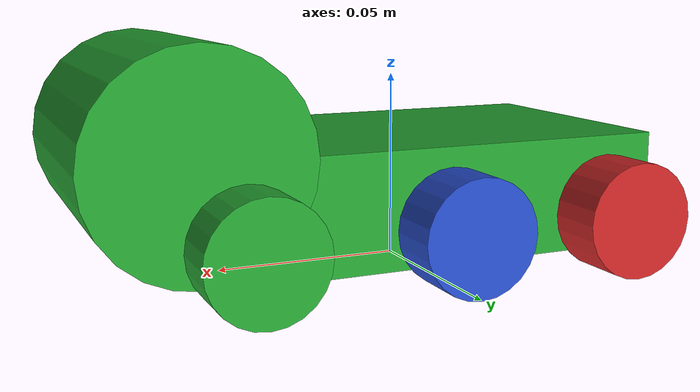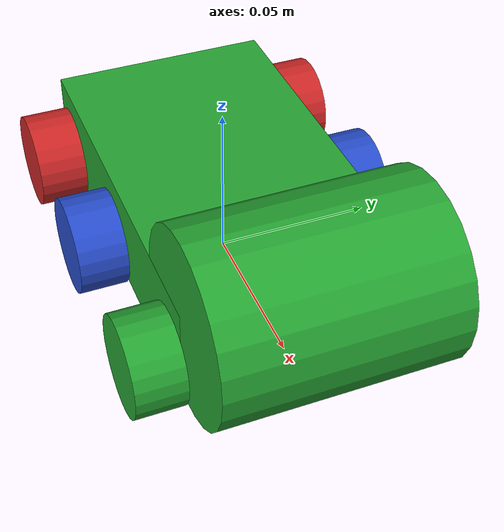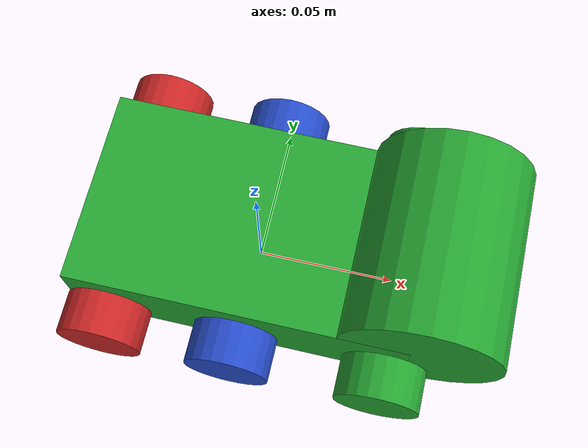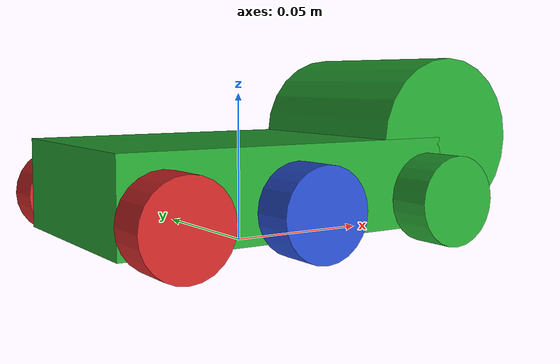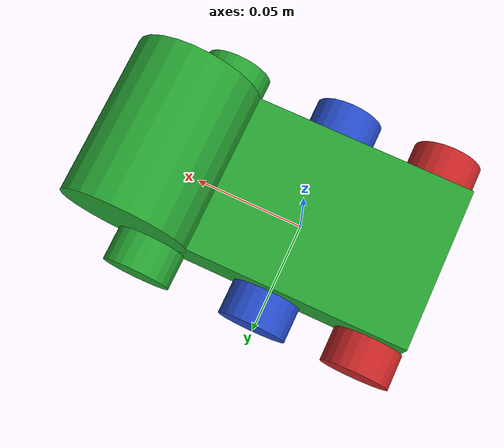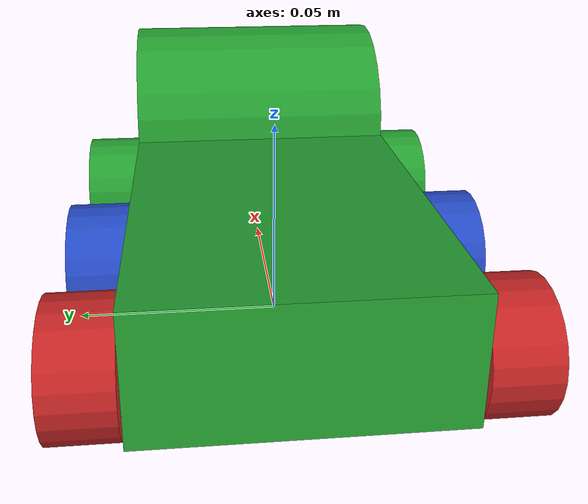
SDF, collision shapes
<sdf version='1.7'>
  <model name='nanosaur_gazebo'>
    <link name='base_link'>
      <inertial>
        <pose>0.007416 0 0.028711 0 -0 0</pose>
        <mass>0.17</mass>
        <inertia>
          <ixx>0.000128586</ixx>
          <ixy>2.5411e-21</ixy>
          <ixz>-1.37217e-05</ixz>
          <iyy>0.000314622</iyy>
          <iyz>0</iyz>
          <izz>0.000360215</izz>
        </inertia>
      </inertial>
      <collision name='base_link_fixed_joint_lump__cover_collision'>
        <pose>0.063 0 0.034 1.5708 1.5708 0</pose>
        <geometry>
          <cylinder>
            <length>0.07</length>
            <radius>0.028</radius>
          </cylinder>
        </geometry>
        <surface>
          <contact>
            <ode/>
          </contact>
          <friction>
            <ode/>
          </friction>
        </surface>
      </collision>
      <collision name='base_link_fixed_joint_lump__base_rear_collision_1'>
        <pose>0 0 0.02 0 -0 0</pose>
        <geometry>
          <box>
            <size>0.12 0.07 0.03</size>
          </box>
        </geometry>
        <surface>
          <contact>
            <ode/>
          </contact>
          <friction>
            <ode/>
          </friction>
        </surface>
      </collision>
      <visual name='base_link_fixed_joint_lump__base_front_visual'>
        <pose>0 0 0.03 0 -0 0</pose>
        <geometry>
          <mesh>
            <scale>0.001 0.001 0.001</scale>
            <uri>file:///home/user/nanosaur/install/nanosaur_description/share/nanosaur_description/meshes/base_front.stl</uri>
          </mesh>
        </geometry>
        <material>
          <ambient>0 0.5 0 1</ambient>
          <diffuse>0 0.5 0 1</diffuse>
          <specular>0 0.5 0 1</specular>
          <script>
            <name>Gazebo/Green</name>
            <uri>file://media/materials/scripts/gazebo.material</uri>
          </script>
        </material>
      </visual>
      <visual name='base_link_fixed_joint_lump__cover_visual_1'>
        <pose>0.06 0 0.004 0 -0 0</pose>
        <geometry>
          <mesh>
            <scale>0.001 0.001 0.001</scale>
            <uri>file:///home/user/nanosaur/install/nanosaur_description/share/nanosaur_description/meshes/cover-fe.stl</uri>
          </mesh>
        </geometry>
        <material>
          <ambient>0 0.5 0 1</ambient>
          <diffuse>0 0.5 0 1</diffuse>
          <specular>0 0.5 0 1</specular>
          <script>
            <name>Gazebo/Green</name>
            <uri>file://media/materials/scripts/gazebo.material</uri>
          </script>
        </material>
      </visual>
      <visual name='base_link_fixed_joint_lump__camera_board_visual_2'>
        <pose>0.072864 0 0.038798 0.087266 1e-06 -1.5708</pose>
        <geometry>
          <mesh>
            <scale>1 1 1</scale>
            <uri>file:///home/user/nanosaur/install/nanosaur_description/share/nanosaur_description/meshes/parts/fisheye_camera.dae</uri>
          </mesh>
        </geometry>
        <material>
          <ambient>0.2 0.2 0.2 1</ambient>
          <diffuse>0.2 0.2 0.2 1</diffuse>
          <specular>0.2 0.2 0.2 1</specular>
          <script>
            <name>Gazebo/Grey</name>
            <uri>file://media/materials/scripts/gazebo.material</uri>
          </script>
        </material>
      </visual>
      <visual name='base_link_fixed_joint_lump__camera_camera_link_visual_3'>
        <pose>0.0742 0 0.035 0 -0.087266 0</pose>
        <geometry>
          <box>
            <size>0.02 0.01 0.01</size>
          </box>
        </geometry>
      </visual>
      <visual name='base_link_fixed_joint_lump__display_left_visual_4'>
        <pose>0.036 0.0242 0.064 0.401425 1e-06 1.57079</pose>
        <geometry>
          <mesh>
            <scale>1 1 1</scale>
            <uri>file:///home/user/nanosaur/install/nanosaur_description/share/nanosaur_description/meshes/parts/OLED_Module.stl</uri>
          </mesh>
        </geometry>
        <material>
          <script>
            <name>Gazebo/Black</name>
            <uri>file://media/materials/scripts/gazebo.material</uri>
          </script>
        </material>
      </visual>
      <visual name='base_link_fixed_joint_lump__display_right_visual_5'>
        <pose>0.036 -0.0242 0.064 0.401425 1e-06 1.57079</pose>
        <geometry>
          <mesh>
            <scale>1 1 1</scale>
            <uri>file:///home/user/nanosaur/install/nanosaur_description/share/nanosaur_description/meshes/parts/OLED_Module.stl</uri>
          </mesh>
        </geometry>
        <material>
          <script>
            <name>Gazebo/Black</name>
            <uri>file://media/materials/scripts/gazebo.material</uri>
          </script>
        </material>
      </visual>
      <visual name='base_link_fixed_joint_lump__motor_board_visual_6'>
        <pose>0.055 0 0.035 0 0.95993 0</pose>
        <geometry>
          <mesh>
            <scale>1 1 1</scale>
            <uri>file:///home/user/nanosaur/install/nanosaur_description/share/nanosaur_description/meshes/parts/motor_board.stl</uri>
          </mesh>
        </geometry>
        <material>
          <ambient>0.2 0.2 0.2 1</ambient>
          <diffuse>0.2 0.2 0.2 1</diffuse>
          <specular>0.2 0.2 0.2 1</specular>
          <script>
            <name>Gazebo/DarkGrey</name>
            <uri>file://media/materials/scripts/gazebo.material</uri>
          </script>
        </material>
      </visual>
      <visual name='base_link_fixed_joint_lump__base_rear_visual_7'>
        <pose>0 0 0.03 0 -0 0</pose>
        <geometry>
          <mesh>
            <scale>0.001 0.001 0.001</scale>
            <uri>file:///home/user/nanosaur/install/nanosaur_description/share/nanosaur_description/meshes/base_rear.stl</uri>
          </mesh>
        </geometry>
        <material>
          <ambient>0 0.5 0 1</ambient>
          <diffuse>0 0.5 0 1</diffuse>
          <specular>0 0.5 0 1</specular>
          <script>
            <name>Gazebo/Green</name>
            <uri>file://media/materials/scripts/gazebo.material</uri>
          </script>
        </material>
      </visual>
      <visual name='base_link_fixed_joint_lump__NVIDIA_jetson_visual_8'>
        <pose>0.039 0.022 0.035 0 -0 3.14159</pose>
        <geometry>
          <mesh>
            <scale>1 1 1</scale>
            <uri>file:///home/user/nanosaur/install/nanosaur_description/share/nanosaur_description/meshes/parts/NVIDIA_jetson_nano_4gb.stl</uri>
          </mesh>
        </geometry>
        <material>
          <ambient>0.2 0.2 0.2 1</ambient>
          <diffuse>0.2 0.2 0.2 1</diffuse>
          <specular>0.2 0.2 0.2 1</specular>
          <script>
            <name>Gazebo/DarkGrey</name>
            <uri>file://media/materials/scripts/gazebo.material</uri>
          </script>
        </material>
      </visual>
      <visual name='base_link_fixed_joint_lump__flap_bottom_visual_9'>
        <pose>-0.0432 0 0.0475 0 -0 0</pose>
        <geometry>
          <mesh>
            <scale>0.001 0.001 0.001</scale>
            <uri>file:///home/user/nanosaur/install/nanosaur_description/share/nanosaur_description/meshes/flap_bottom.stl</uri>
          </mesh>
        </geometry>
        <material>
          <ambient>0 0.5 0 1</ambient>
          <diffuse>0 0.5 0 1</diffuse>
          <specular>0 0.5 0 1</specular>
          <script>
            <name>Gazebo/Green</name>
            <uri>file://media/materials/scripts/gazebo.material</uri>
          </script>
        </material>
      </visual>
      <visual name='base_link_fixed_joint_lump__board_expansion_visual_10'>
        <pose>-0.052 0.0005 0.047 0 -0 0</pose>
        <geometry>
          <mesh>
            <scale>1 1 1</scale>
            <uri>file:///home/user/nanosaur/install/nanosaur_description/share/nanosaur_description/meshes/parts/nanosaur-exp-board.stl</uri>
          </mesh>
        </geometry>
        <material>
          <ambient>0.5 0.5 0.5 1</ambient>
          <diffuse>0.5 0.5 0.5 1</diffuse>
          <specular>0.5 0.5 0.5 1</specular>
          <script>
            <name>Gazebo/DarkGrey</name>
            <uri>file://media/materials/scripts/gazebo.material</uri>
          </script>
        </material>
      </visual>
      <visual name='base_link_fixed_joint_lump__flap_top_visual_11'>
        <pose>-0.0432 0 0.0475 0 -0 0</pose>
        <geometry>
          <mesh>
            <scale>0.001 0.001 0.001</scale>
            <uri>file:///home/user/nanosaur/install/nanosaur_description/share/nanosaur_description/meshes/flap_top.stl</uri>
          </mesh>
        </geometry>
        <material>
          <ambient>0 0.5 0 1</ambient>
          <diffuse>0 0.5 0 1</diffuse>
          <specular>0 0.5 0 1</specular>
          <script>
            <name>Gazebo/Green</name>
            <uri>file://media/materials/scripts/gazebo.material</uri>
          </script>
        </material>
      </visual>
      <visual name='base_link_fixed_joint_lump__pb_holder_visual_12'>
        <pose>-0.0545 0 0.0239 0 -0 0</pose>
        <geometry>
          <mesh>
            <scale>0.001 0.001 0.001</scale>
            <uri>file:///home/user/nanosaur/install/nanosaur_description/share/nanosaur_description/meshes/pb_holder.stl</uri>
          </mesh>
        </geometry>
        <material>
          <ambient>0 0.5 0 1</ambient>
          <diffuse>0 0.5 0 1</diffuse>
          <specular>0 0.5 0 1</specular>
          <script>
            <name>Gazebo/Green</name>
            <uri>file://media/materials/scripts/gazebo.material</uri>
          </script>
        </material>
      </visual>
      <visual name='base_link_fixed_joint_lump__power_bank_visual_13'>
        <pose>0 0 0.0185 0 -0 3.14159</pose>
        <geometry>
          <mesh>
            <scale>1 1 1</scale>
            <uri>file:///home/user/nanosaur/install/nanosaur_description/share/nanosaur_description/meshes/parts/power_bank.stl</uri>
          </mesh>
        </geometry>
        <material>
          <ambient>0.2 0.2 0.2 1</ambient>
          <diffuse>0.2 0.2 0.2 1</diffuse>
          <specular>0.2 0.2 0.2 1</specular>
          <script>
            <name>Gazebo/DarkGrey</name>
            <uri>file://media/materials/scripts/gazebo.material</uri>
          </script>
        </material>
      </visual>
      <visual name='base_link_fixed_joint_lump__motor_left_visual_14'>
        <pose>0.053 0.012 0.015 -1.5708 -1.5708 0</pose>
        <geometry>
          <mesh>
            <scale>1 1 1</scale>
            <uri>file:///home/user/nanosaur/install/nanosaur_description/share/nanosaur_description/meshes/parts/Pololu-Micro-Metal-Gearmotor.stl</uri>
          </mesh>
        </geometry>
        <material>
          <ambient>0.9 0.7 0 1</ambient>
          <diffuse>0.9 0.7 0 1</diffuse>
          <specular>0.9 0.7 0 1</specular>
          <script>
            <name>Gazebo/Gold</name>
            <uri>file://media/materials/scripts/gazebo.material</uri>
          </script>
        </material>
      </visual>
      <visual name='base_link_fixed_joint_lump__track_left_visual_15'>
        <pose>0.004 0.043 0.015 0 -0 0</pose>
        <geometry>
          <mesh>
            <scale>0.001 0.001 0.001</scale>
            <uri>file:///home/user/nanosaur/install/nanosaur_description/share/nanosaur_description/meshes/track.stl</uri>
          </mesh>
        </geometry>
        <material>
          <ambient>0.01 0.01 0.01 1</ambient>
          <diffuse>0.01 0.01 0.01 1</diffuse>
          <specular>0.01 0.01 0.01 1</specular>
          <script>
            <name>Gazebo/Black</name>
            <uri>file://media/materials/scripts/gazebo.material</uri>
          </script>
        </material>
      </visual>
      <visual name='base_link_fixed_joint_lump__slider_left_visual_16'>
        <pose>0.004 0.051 0.015 -1.57079 0 0</pose>
        <geometry>
          <mesh>
            <scale>0.001 0.001 0.001</scale>
            <uri>file:///home/user/nanosaur/install/nanosaur_description/share/nanosaur_description/meshes/slider.stl</uri>
          </mesh>
        </geometry>
        <material>
          <ambient>0 0.5 0 1</ambient>
          <diffuse>0 0.5 0 1</diffuse>
          <specular>0 0.5 0 1</specular>
          <script>
            <name>Gazebo/Green</name>
            <uri>file://media/materials/scripts/gazebo.material</uri>
          </script>
        </material>
      </visual>
      <visual name='base_link_fixed_joint_lump__motor_right_visual_17'>
        <pose>0.053 -0.012 0.015 1.5708 1.5708 0</pose>
        <geometry>
          <mesh>
            <scale>1 1 1</scale>
            <uri>file:///home/user/nanosaur/install/nanosaur_description/share/nanosaur_description/meshes/parts/Pololu-Micro-Metal-Gearmotor.stl</uri>
          </mesh>
        </geometry>
        <material>
          <ambient>0.9 0.7 0 1</ambient>
          <diffuse>0.9 0.7 0 1</diffuse>
          <specular>0.9 0.7 0 1</specular>
          <script>
            <name>Gazebo/Gold</name>
            <uri>file://media/materials/scripts/gazebo.material</uri>
          </script>
        </material>
      </visual>
      <visual name='base_link_fixed_joint_lump__track_right_visual_18'>
        <pose>0.004 -0.043 0.015 3.14159 -0 0</pose>
        <geometry>
          <mesh>
            <scale>0.001 0.001 0.001</scale>
            <uri>file:///home/user/nanosaur/install/nanosaur_description/share/nanosaur_description/meshes/track.stl</uri>
          </mesh>
        </geometry>
        <material>
          <ambient>0.01 0.01 0.01 1</ambient>
          <diffuse>0.01 0.01 0.01 1</diffuse>
          <specular>0.01 0.01 0.01 1</specular>
          <script>
            <name>Gazebo/Black</name>
            <uri>file://media/materials/scripts/gazebo.material</uri>
          </script>
        </material>
      </visual>
      <visual name='base_link_fixed_joint_lump__slider_right_visual_19'>
        <pose>0.004 -0.051 0.015 1.57079 -0 0</pose>
        <geometry>
          <mesh>
            <scale>0.001 0.001 0.001</scale>
            <uri>file:///home/user/nanosaur/install/nanosaur_description/share/nanosaur_description/meshes/slider.stl</uri>
          </mesh>
        </geometry>
        <material>
          <ambient>0 0.5 0 1</ambient>
          <diffuse>0 0.5 0 1</diffuse>
          <specular>0 0.5 0 1</specular>
          <script>
            <name>Gazebo/Green</name>
            <uri>file://media/materials/scripts/gazebo.material</uri>
          </script>
        </material>
      </visual>
      <sensor name='camera' type='wideanglecamera'>
        <camera>
          <horizontal_fov>6.283</horizontal_fov>
          <image>
            <width>320</width>
            <height>240</height>
          </image>
          <clip>
            <near>0.1</near>
            <far>100</far>
          </clip>
          <lens>
            <type>custom</type>
            <custom_function>
              <c1>1.05</c1>
              <c2>4</c2>
              <f>1</f>
              <fun>tan</fun>
            </custom_function>
            <scale_to_hfov>1</scale_to_hfov>
            <cutoff_angle>3.1415</cutoff_angle>
            <env_texture_size>512</env_texture_size>
          </lens>
          <always_on>1</always_on>
          <update_rate>30</update_rate>
        </camera>
        <plugin name='camera_controller' filename='libgazebo_ros_camera.so'>
          <cameraName>camera</cameraName>
          <imageTopicName>image_raw</imageTopicName>
          <cameraInfoTopicName>camera_info</cameraInfoTopicName>
          <frameName>camera_camera_link_frame</frameName>
          <hackBaseline>0.07</hackBaseline>
        </plugin>
        <pose>0.094124 0 0.036743 0 -0.087266 0</pose>
      </sensor>
    </link>
    <joint name='front_wheel_left_joint' type='revolute'>
      <pose relative_to='base_link'>0.053 0.043 0.015 -1.57079 0 0</pose>
      <parent>base_link</parent>
      <child>front_wheel_left</child>
      <axis>
        <xyz>0 0 1</xyz>
        <limit>
          <lower>-1e+16</lower>
          <upper>1e+16</upper>
        </limit>
        <dynamics>
          <spring_reference>0</spring_reference>
          <spring_stiffness>0</spring_stiffness>
        </dynamics>
      </axis>
    </joint>
    <link name='front_wheel_left'>
      <pose relative_to='front_wheel_left_joint'>0 0 0 0 -0 0</pose>
      <inertial>
        <pose>0 0 0 0 -0 0</pose>
        <mass>0.01</mass>
        <inertia>
          <ixx>1.66667e-07</ixx>
          <ixy>0</ixy>
          <ixz>0</ixz>
          <iyy>1.66667e-07</iyy>
          <iyz>0</iyz>
          <izz>1.66667e-07</izz>
        </inertia>
      </inertial>
      <collision name='front_wheel_left_collision'>
        <pose>0 0 0 0 -0 0</pose>
        <geometry>
          <cylinder>
            <length>0.015</length>
            <radius>0.015</radius>
          </cylinder>
        </geometry>
        <surface>
          <contact>
            <ode>
              <kp>1e+07</kp>
              <kd>1e+07</kd>
            </ode>
          </contact>
          <friction>
            <ode>
              <mu>0</mu>
              <mu2>0</mu2>
            </ode>
          </friction>
        </surface>
      </collision>
      <visual name='front_wheel_left_visual'>
        <pose>0 0 0 0 -0 0</pose>
        <geometry>
          <mesh>
            <scale>0.001 0.001 0.001</scale>
            <uri>file:///home/user/nanosaur/install/nanosaur_description/share/nanosaur_description/meshes/wheel.stl</uri>
          </mesh>
        </geometry>
        <material>
          <ambient>0 0.5 0 1</ambient>
          <diffuse>0 0.5 0 1</diffuse>
          <specular>0 0.5 0 1</specular>
          <script>
            <name>Gazebo/Green</name>
            <uri>file://media/materials/scripts/gazebo.material</uri>
          </script>
        </material>
      </visual>
    </link>
    <joint name='wheel_left_joint' type='revolute'>
      <pose relative_to='base_link'>-0.046 0.043 0.015 -1.57079 0 0</pose>
      <parent>base_link</parent>
      <child>wheel_left</child>
      <axis>
        <xyz>0 0 1</xyz>
        <limit>
          <lower>-1e+16</lower>
          <upper>1e+16</upper>
        </limit>
        <dynamics>
          <spring_reference>0</spring_reference>
          <spring_stiffness>0</spring_stiffness>
        </dynamics>
      </axis>
    </joint>
    <link name='wheel_left'>
      <pose relative_to='wheel_left_joint'>0 0 0 0 -0 0</pose>
      <inertial>
        <pose>0 0 0 0 -0 0</pose>
        <mass>0.01</mass>
        <inertia>
          <ixx>1.66667e-07</ixx>
          <ixy>0</ixy>
          <ixz>0</ixz>
          <iyy>1.66667e-07</iyy>
          <iyz>0</iyz>
          <izz>1.66667e-07</izz>
        </inertia>
      </inertial>
      <collision name='wheel_left_collision'>
        <pose>0 0 0 0 -0 0</pose>
        <geometry>
          <cylinder>
            <length>0.015</length>
            <radius>0.015</radius>
          </cylinder>
        </geometry>
        <surface>
          <contact>
            <ode>
              <kp>1e+07</kp>
              <kd>1e+07</kd>
            </ode>
          </contact>
          <friction>
            <ode>
              <mu>0</mu>
              <mu2>0</mu2>
            </ode>
          </friction>
        </surface>
      </collision>
      <visual name='wheel_left_visual'>
        <pose>0 0 0 0 -0 0</pose>
        <geometry>
          <mesh>
            <scale>0.001 0.001 0.001</scale>
            <uri>file:///home/user/nanosaur/install/nanosaur_description/share/nanosaur_description/meshes/wheel.stl</uri>
          </mesh>
        </geometry>
        <material>
          <ambient>0.5 0 0 1</ambient>
          <diffuse>0.5 0 0 1</diffuse>
          <specular>0.5 0 0 1</specular>
          <script>
            <name>Gazebo/Red</name>
            <uri>file://media/materials/scripts/gazebo.material</uri>
          </script>
        </material>
      </visual>
    </link>
    <joint name='front_wheel_right_joint' type='revolute'>
      <pose relative_to='base_link'>0.053 -0.043 0.015 1.57079 -0 0</pose>
      <parent>base_link</parent>
      <child>front_wheel_right</child>
      <axis>
        <xyz>0 0 -1</xyz>
        <limit>
          <lower>-1e+16</lower>
          <upper>1e+16</upper>
        </limit>
        <dynamics>
          <spring_reference>0</spring_reference>
          <spring_stiffness>0</spring_stiffness>
        </dynamics>
      </axis>
    </joint>
    <link name='front_wheel_right'>
      <pose relative_to='front_wheel_right_joint'>0 0 0 0 -0 0</pose>
      <inertial>
        <pose>0 0 0 0 -0 0</pose>
        <mass>0.01</mass>
        <inertia>
          <ixx>1.66667e-07</ixx>
          <ixy>0</ixy>
          <ixz>0</ixz>
          <iyy>1.66667e-07</iyy>
          <iyz>0</iyz>
          <izz>1.66667e-07</izz>
        </inertia>
      </inertial>
      <collision name='front_wheel_right_collision'>
        <pose>0 0 0 0 -0 0</pose>
        <geometry>
          <cylinder>
            <length>0.015</length>
            <radius>0.015</radius>
          </cylinder>
        </geometry>
        <surface>
          <contact>
            <ode>
              <kp>1e+07</kp>
              <kd>1e+07</kd>
            </ode>
          </contact>
          <friction>
            <ode>
              <mu>0</mu>
              <mu2>0</mu2>
            </ode>
          </friction>
        </surface>
      </collision>
      <visual name='front_wheel_right_visual'>
        <pose>0 0 0 0 -0 0</pose>
        <geometry>
          <mesh>
            <scale>0.001 0.001 0.001</scale>
            <uri>file:///home/user/nanosaur/install/nanosaur_description/share/nanosaur_description/meshes/wheel.stl</uri>
          </mesh>
        </geometry>
        <material>
          <ambient>0 0.5 0 1</ambient>
          <diffuse>0 0.5 0 1</diffuse>
          <specular>0 0.5 0 1</specular>
          <script>
            <name>Gazebo/Green</name>
            <uri>file://media/materials/scripts/gazebo.material</uri>
          </script>
        </material>
      </visual>
    </link>
    <joint name='wheel_right_joint' type='revolute'>
      <pose relative_to='base_link'>-0.046 -0.043 0.015 1.57079 -0 0</pose>
      <parent>base_link</parent>
      <child>wheel_right</child>
      <axis>
        <xyz>0 0 -1</xyz>
        <limit>
          <lower>-1e+16</lower>
          <upper>1e+16</upper>
        </limit>
        <dynamics>
          <spring_reference>0</spring_reference>
          <spring_stiffness>0</spring_stiffness>
        </dynamics>
      </axis>
    </joint>
    <link name='wheel_right'>
      <pose relative_to='wheel_right_joint'>0 0 0 0 -0 0</pose>
      <inertial>
        <pose>0 0 0 0 -0 0</pose>
        <mass>0.01</mass>
        <inertia>
          <ixx>1.66667e-07</ixx>
          <ixy>0</ixy>
          <ixz>0</ixz>
          <iyy>1.66667e-07</iyy>
          <iyz>0</iyz>
          <izz>1.66667e-07</izz>
        </inertia>
      </inertial>
      <collision name='wheel_right_collision'>
        <pose>0 0 0 0 -0 0</pose>
        <geometry>
          <cylinder>
            <length>0.015</length>
            <radius>0.015</radius>
          </cylinder>
        </geometry>
        <surface>
          <contact>
            <ode>
              <kp>1e+07</kp>
              <kd>1e+07</kd>
            </ode>
          </contact>
          <friction>
            <ode>
              <mu>0</mu>
              <mu2>0</mu2>
            </ode>
          </friction>
        </surface>
      </collision>
      <visual name='wheel_right_visual'>
        <pose>0 0 0 0 -0 0</pose>
        <geometry>
          <mesh>
            <scale>0.001 0.001 0.001</scale>
            <uri>file:///home/user/nanosaur/install/nanosaur_description/share/nanosaur_description/meshes/wheel.stl</uri>
          </mesh>
        </geometry>
        <material>
          <ambient>0.5 0 0 1</ambient>
          <diffuse>0.5 0 0 1</diffuse>
          <specular>0.5 0 0 1</specular>
          <script>
            <name>Gazebo/Red</name>
            <uri>file://media/materials/scripts/gazebo.material</uri>
          </script>
        </material>
      </visual>
    </link>
    <joint name='sprocket_left_joint' type='revolute'>
      <pose relative_to='base_link'>0 0.043 0.015 -1.57079 0 0</pose>
      <parent>base_link</parent>
      <child>sprocket_left</child>
      <axis>
        <xyz>0 0 1</xyz>
        <limit>
          <lower>-1e+16</lower>
          <upper>1e+16</upper>
        </limit>
        <dynamics>
          <spring_reference>0</spring_reference>
          <spring_stiffness>0</spring_stiffness>
        </dynamics>
      </axis>
    </joint>
    <link name='sprocket_left'>
      <pose relative_to='sprocket_left_joint'>0 0 0 0 -0 0</pose>
      <inertial>
        <pose>0 0 0 0 -0 0</pose>
        <mass>0.01</mass>
        <inertia>
          <ixx>1.66667e-07</ixx>
          <ixy>0</ixy>
          <ixz>0</ixz>
          <iyy>1.66667e-07</iyy>
          <iyz>0</iyz>
          <izz>1.66667e-07</izz>
        </inertia>
      </inertial>
      <collision name='sprocket_left_collision'>
        <pose>0 0 0 0 -0 0</pose>
        <geometry>
          <cylinder>
            <length>0.015</length>
            <radius>0.015</radius>
          </cylinder>
        </geometry>
        <surface>
          <contact>
            <ode>
              <kp>1e+07</kp>
              <kd>1e+07</kd>
            </ode>
          </contact>
          <friction>
            <ode>
              <mu>1e+07</mu>
              <mu2>1e+07</mu2>
            </ode>
          </friction>
        </surface>
      </collision>
      <visual name='sprocket_left_visual'>
        <pose>0 0 0 0 -0 0</pose>
        <geometry>
          <mesh>
            <scale>0.001 0.001 0.001</scale>
            <uri>file:///home/user/nanosaur/install/nanosaur_description/share/nanosaur_description/meshes/sprocket.stl</uri>
          </mesh>
        </geometry>
        <material>
          <ambient>0 0 0.5 1</ambient>
          <diffuse>0 0 0.5 1</diffuse>
          <specular>0 0 0.5 1</specular>
          <script>
            <name>Gazebo/Blue</name>
            <uri>file://media/materials/scripts/gazebo.material</uri>
          </script>
        </material>
      </visual>
    </link>
    <joint name='sprocket_right_joint' type='revolute'>
      <pose relative_to='base_link'>0 -0.043 0.015 1.57079 -0 0</pose>
      <parent>base_link</parent>
      <child>sprocket_right</child>
      <axis>
        <xyz>0 0 -1</xyz>
        <limit>
          <lower>-1e+16</lower>
          <upper>1e+16</upper>
        </limit>
        <dynamics>
          <spring_reference>0</spring_reference>
          <spring_stiffness>0</spring_stiffness>
        </dynamics>
      </axis>
    </joint>
    <link name='sprocket_right'>
      <pose relative_to='sprocket_right_joint'>0 0 0 0 -0 0</pose>
      <inertial>
        <pose>0 0 0 0 -0 0</pose>
        <mass>0.01</mass>
        <inertia>
          <ixx>1.66667e-07</ixx>
          <ixy>0</ixy>
          <ixz>0</ixz>
          <iyy>1.66667e-07</iyy>
          <iyz>0</iyz>
          <izz>1.66667e-07</izz>
        </inertia>
      </inertial>
      <collision name='sprocket_right_collision'>
        <pose>0 0 0 0 -0 0</pose>
        <geometry>
          <cylinder>
            <length>0.015</length>
            <radius>0.015</radius>
          </cylinder>
        </geometry>
        <surface>
          <contact>
            <ode>
              <kp>1e+07</kp>
              <kd>1e+07</kd>
            </ode>
          </contact>
          <friction>
            <ode>
              <mu>1e+07</mu>
              <mu2>1e+07</mu2>
            </ode>
          </friction>
        </surface>
      </collision>
      <visual name='sprocket_right_visual'>
        <pose>0 0 0 0 -0 0</pose>
        <geometry>
          <mesh>
            <scale>0.001 0.001 0.001</scale>
            <uri>file:///home/user/nanosaur/install/nanosaur_description/share/nanosaur_description/meshes/sprocket.stl</uri>
          </mesh>
        </geometry>
        <material>
          <ambient>0 0 0.5 1</ambient>
          <diffuse>0 0 0.5 1</diffuse>
          <specular>0 0 0.5 1</specular>
          <script>
            <name>Gazebo/Blue</name>
            <uri>file://media/materials/scripts/gazebo.material</uri>
          </script>
        </material>
      </visual>
    </link>
    <static>0</static>
    <plugin name='skid_steer_drive_controller' filename='libgazebo_ros_diff_drive.so'>
      <ros>
        <namespace>/nanosaur</namespace>
        <argument>--ros-args --remap /cmd_vel:=cmd_vel</argument>
        <argument>--ros-args --remap /odom:=odom</argument>
      </ros>
      <update_rate>100.0</update_rate>
      <num_wheel_pairs>2</num_wheel_pairs>
      <left_joint>sprocket_left_joint</left_joint>
      <left_joint>wheel_left_joint</left_joint>
      <right_joint>sprocket_right_joint</right_joint>
      <right_joint>wheel_right_joint</right_joint>
      <wheel_separation>0.4</wheel_separation>
      <wheel_diameter>0.03</wheel_diameter>
      <wheel_acceleration>0.0</wheel_acceleration>
      <max_wheel_torque>15</max_wheel_torque>
      <odometry_frame>odom</odometry_frame>
      <robot_base_frame>base_link</robot_base_frame>
      <publish_odom>1</publish_odom>
      <publish_odom_tf>0</publish_odom_tf>
      <publish_wheel_tf>1</publish_wheel_tf>
      <odometry_source>1</odometry_source>
      <publis_wheel_joint_state>0</publis_wheel_joint_state>
    </plugin>
  </model>
</sdf>
